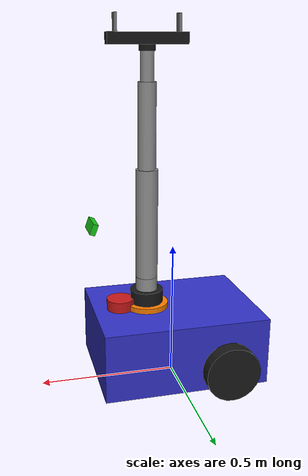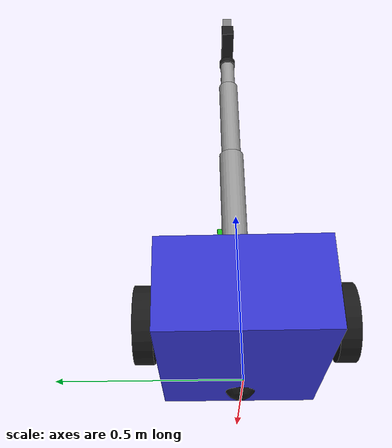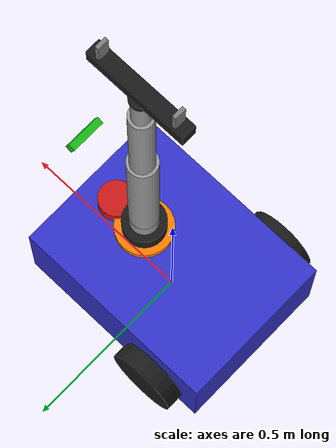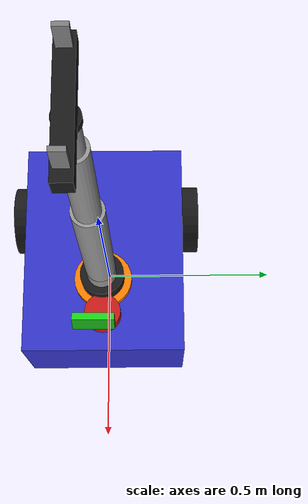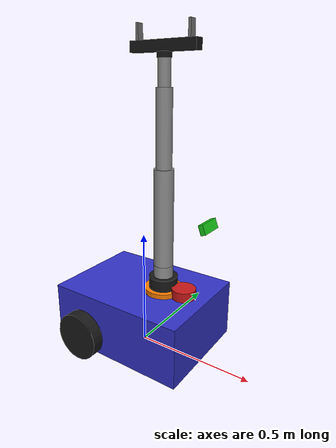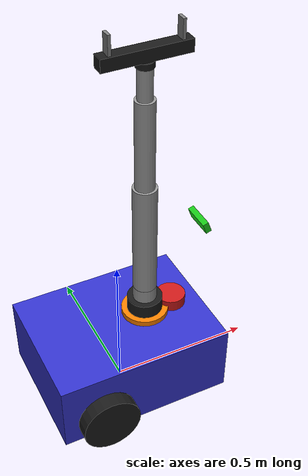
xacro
<?xml version="1.0"?>
<robot name="warehouse_robot" xmlns:xacro="http://www.ros.org/wiki/xacro">

  <xacro:include filename="$(find warehouse_robot_description)/urdf/base.xacro" />
  <xacro:include filename="$(find warehouse_robot_description)/urdf/wheels.xacro" />
  <xacro:include filename="$(find warehouse_robot_description)/urdf/sensors.xacro" />
  <xacro:include filename="$(find warehouse_robot_description)/urdf/arm_mount.xacro" />
  <xacro:include filename="$(find warehouse_robot_description)/urdf/arm.xacro" />
  <xacro:include filename="$(find warehouse_robot_description)/urdf/gripper.xacro" />
  <xacro:include filename="$(find warehouse_robot_description)/urdf/ros2_control.xacro" />

  <!-- Plugins for Gazebo Sim -->
  <gazebo>
    <plugin filename="gz_ros2_control-system" name="gz_ros2_control::GazeboSimROS2ControlPlugin">
      <ros>
        <namespace>/</namespace>
      </ros>
      <parameters>$(find warehouse_bringup)/config/controllers.yaml</parameters>
    </plugin>
  </gazebo>

</robot>

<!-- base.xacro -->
<robot xmlns:xacro="http://www.ros.org/wiki/xacro">

  <xacro:property name="base_length" value="0.6"/>
  <xacro:property name="base_width" value="0.45"/>
  <xacro:property name="base_height" value="0.25"/>
  <xacro:property name="base_z_offset" value="0.15"/> <!-- From ground to center of base -->

  <material name="blue">
    <color rgba="0.2 0.2 0.8 1"/>
  </material>

  <link name="base_footprint"/>

  <joint name="base_joint" type="fixed">
    <parent link="base_footprint"/>
    <child link="base_link"/>
    <origin xyz="0 0 ${base_z_offset}" rpy="0 0 0"/>
  </joint>

  <link name="base_link">
    <visual>
      <origin xyz="0 0 0" rpy="0 0 0"/>
      <geometry>
        <box size="${base_length} ${base_width} ${base_height}"/>
      </geometry>
      <material name="blue"/>
    </visual>
    <collision>
      <origin xyz="0 0 0" rpy="0 0 0"/>
      <geometry>
        <box size="${base_length} ${base_width} ${base_height}"/>
      </geometry>
    </collision>
    <inertial>
      <origin xyz="0 0 0" rpy="0 0 0"/>
      <mass value="20.0"/>
      <inertia ixx="1.0" ixy="0.0" ixz="0.0" iyy="1.0" iyz="0.0" izz="1.0"/>
    </inertial>
  </link>

  <gazebo reference="base_link">
    <material>Gazebo/Blue</material>
  </gazebo>

</robot>

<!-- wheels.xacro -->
<robot xmlns:xacro="http://www.ros.org/wiki/xacro">

  <xacro:property name="wheel_radius" value="0.1"/>
  <xacro:property name="wheel_width" value="0.05"/>
  <xacro:property name="wheel_separation" value="0.5"/> <!-- base_width 0.45 + width 0.05 -->
  <xacro:property name="wheel_x_offset" value="-0.15"/>
  <xacro:property name="wheel_z_offset" value="-0.05"/> <!-- 0.15 (base_link) - 0.10 (wheel radius) = 0.05 -->

  <material name="black">
    <color rgba="0.1 0.1 0.1 1"/>
  </material>

  <xacro:macro name="drive_wheel" params="prefix y_reflect">
    <link name="${prefix}_wheel_link">
      <visual>
        <origin xyz="0 0 0" rpy="${pi/2} 0 0"/>
        <geometry>
          <cylinder radius="${wheel_radius}" length="${wheel_width}"/>
        </geometry>
        <material name="black"/>
      </visual>
      <collision>
        <origin xyz="0 0 0" rpy="${pi/2} 0 0"/>
        <geometry>
          <cylinder radius="${wheel_radius}" length="${wheel_width}"/>
        </geometry>
      </collision>
      <inertial>
        <origin xyz="0 0 0" rpy="${pi/2} 0 0"/>
        <mass value="1.0"/>
        <inertia ixx="0.01" ixy="0.0" ixz="0.0" iyy="0.01" iyz="0.0" izz="0.01"/>
      </inertial>
    </link>

    <joint name="${prefix}_wheel_joint" type="continuous">
      <parent link="base_link"/>
      <child link="${prefix}_wheel_link"/>
      <origin xyz="${wheel_x_offset} ${y_reflect * wheel_separation / 2} ${wheel_z_offset}" rpy="0 0 0"/>
      <axis xyz="0 1 0"/>
    </joint>

    <gazebo reference="${prefix}_wheel_link">
      <material>Gazebo/DarkGrey</material>
      <mu1>1.0</mu1>
      <mu2>1.0</mu2>
    </gazebo>
  </xacro:macro>

  <xacro:drive_wheel prefix="left" y_reflect="1"/>
  <xacro:drive_wheel prefix="right" y_reflect="-1"/>

  <!-- Caster Wheel -->
  <xacro:property name="caster_radius" value="0.05"/>
  <xacro:property name="caster_x_offset" value="0.2"/>
  <xacro:property name="caster_z_offset" value="-0.1"/> <!-- 0.15 (base_link) - 0.05 (caster radius) = 0.10 -->

  <link name="caster_wheel_link">
    <visual>
      <origin xyz="0 0 0" rpy="0 0 0"/>
      <geometry>
        <sphere radius="${caster_radius}"/>
      </geometry>
      <material name="black"/>
    </visual>
    <collision>
      <origin xyz="0 0 0" rpy="0 0 0"/>
      <geometry>
        <sphere radius="${caster_radius}"/>
      </geometry>
    </collision>
    <inertial>
      <origin xyz="0 0 0" rpy="0 0 0"/>
      <mass value="0.5"/>
      <inertia ixx="0.001" ixy="0.0" ixz="0.0" iyy="0.001" iyz="0.0" izz="0.001"/>
    </inertial>
  </link>

  <joint name="caster_wheel_joint" type="fixed">
    <parent link="base_link"/>
    <child link="caster_wheel_link"/>
    <origin xyz="${caster_x_offset} 0 ${caster_z_offset}" rpy="0 0 0"/>
  </joint>

  <gazebo reference="caster_wheel_link">
    <material>Gazebo/DarkGrey</material>
    <mu1>0.01</mu1>
    <mu2>0.01</mu2>
  </gazebo>

</robot>

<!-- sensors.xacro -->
<robot xmlns:xacro="http://www.ros.org/wiki/xacro">

  <material name="red">
    <color rgba="0.8 0.1 0.1 1"/>
  </material>

  <material name="green">
    <color rgba="0.1 0.8 0.1 1"/>
  </material>

  <material name="yellow">
    <color rgba="0.8 0.8 0.1 1"/>
  </material>

  <!-- Lidar -->
  <link name="lidar_link">
    <visual>
      <origin xyz="0 0 0" rpy="0 0 0"/>
      <geometry>
        <cylinder radius="0.05" length="0.04"/>
      </geometry>
      <material name="red"/>
    </visual>
    <collision>
      <origin xyz="0 0 0" rpy="0 0 0"/>
      <geometry>
        <cylinder radius="0.05" length="0.04"/>
      </geometry>
    </collision>
    <inertial>
      <mass value="0.1"/>
      <inertia ixx="0.0001" ixy="0.0" ixz="0.0" iyy="0.0001" iyz="0.0" izz="0.0001"/>
    </inertial>
  </link>

  <joint name="lidar_joint" type="fixed">
    <parent link="base_link"/>
    <child link="lidar_link"/>
    <origin xyz="0.2 0 ${0.25/2 + 0.02}" rpy="0 0 0"/>
  </joint>

  <gazebo reference="lidar_link">
    <sensor type="gpu_lidar" name="lidar_sensor">
      <pose>0 0 0 0 0 0</pose>
      <visualize>true</visualize>
      <update_rate>5.0</update_rate>
      <ray>
        <scan>
          <horizontal>
            <samples>360</samples>
            <resolution>1</resolution>
            <min_angle>-3.14159</min_angle>
            <max_angle>3.14159</max_angle>
          </horizontal>
        </scan>
        <range>
          <min>0.15</min>
          <max>12.0</max>
          <resolution>0.01</resolution>
        </range>
      </ray>
      <topic>scan</topic>
      <gz_frame_id>lidar_link</gz_frame_id>
    </sensor>
  </gazebo>

  <!-- Camera -->
  <link name="camera_link">
    <visual>
      <origin xyz="0 0 0" rpy="0 0 0"/>
      <geometry>
        <box size="0.02 0.1 0.04"/>
      </geometry>
      <material name="green"/>
    </visual>
    <collision>
      <origin xyz="0 0 0" rpy="0 0 0"/>
      <geometry>
        <box size="0.02 0.1 0.04"/>
      </geometry>
    </collision>
    <inertial>
      <mass value="0.05"/>
      <inertia ixx="0.0001" ixy="0.0" ixz="0.0" iyy="0.0001" iyz="0.0" izz="0.0001"/>
    </inertial>
  </link>

  <joint name="camera_joint" type="fixed">
    <parent link="base_link"/>
    <child link="camera_link"/>
    <!-- Raise the camera above the conveyor edge so it can see product tags
         during the reception stop without the belt occluding the marker. -->
    <origin xyz="0.3 0 0.45" rpy="0 -0.35 0"/>
  </joint>

  <link name="camera_link_optical"/>

  <joint name="camera_optical_joint" type="fixed">
    <parent link="camera_link"/>
    <child link="camera_link_optical"/>
    <origin xyz="0 0 0" rpy="${-pi/2} 0 ${-pi/2}"/>
  </joint>

  <gazebo reference="camera_link">
    <sensor type="camera" name="camera_sensor">
      <pose>0 0 0 0 0 0</pose>
      <visualize>true</visualize>
      <update_rate>30.0</update_rate>
      <always_on>true</always_on>
      <camera name="rgb_camera">
        <horizontal_fov>1.3962634</horizontal_fov>
        <image>
          <width>640</width>
          <height>480</height>
          <format>R8G8B8</format>
        </image>
        <clip>
          <near>0.02</near>
          <far>300</far>
        </clip>
      </camera>
      <topic>camera/image_raw</topic>
      <gz_frame_id>camera_link_optical</gz_frame_id>
    </sensor>
  </gazebo>

  <!-- Downward-facing camera for floor landmarks -->
  <link name="down_camera_link">
    <visual>
      <origin xyz="0 0 0" rpy="0 0 0"/>
      <geometry>
        <box size="0.05 0.05 0.03"/>
      </geometry>
      <material name="green"/>
    </visual>
    <collision>
      <origin xyz="0 0 0" rpy="0 0 0"/>
      <geometry>
        <box size="0.05 0.05 0.03"/>
      </geometry>
    </collision>
    <inertial>
      <mass value="0.04"/>
      <inertia ixx="0.00005" ixy="0.0" ixz="0.0" iyy="0.00005" iyz="0.0" izz="0.00005"/>
    </inertial>
  </link>

  <joint name="down_camera_joint" type="fixed">
    <parent link="base_link"/>
    <child link="down_camera_link"/>
    <origin xyz="0.18 0 0.08" rpy="0 ${-pi/2} 0"/>
  </joint>

  <link name="down_camera_link_optical"/>

  <joint name="down_camera_optical_joint" type="fixed">
    <parent link="down_camera_link"/>
    <child link="down_camera_link_optical"/>
    <origin xyz="0 0 0" rpy="${-pi/2} 0 ${-pi/2}"/>
  </joint>

  <gazebo reference="down_camera_link">
    <sensor type="camera" name="down_camera_sensor">
      <pose>0 0 0 0 0 0</pose>
      <visualize>false</visualize>
      <update_rate>20.0</update_rate>
      <always_on>true</always_on>
      <camera name="down_rgb_camera">
        <horizontal_fov>1.2217304764</horizontal_fov>
        <image>
          <width>640</width>
          <height>480</height>
          <format>R8G8B8</format>
        </image>
        <clip>
          <near>0.02</near>
          <far>5.0</far>
        </clip>
      </camera>
      <topic>down_camera/image_raw</topic>
      <gz_frame_id>down_camera_link_optical</gz_frame_id>
    </sensor>
  </gazebo>

  <!-- IMU -->
  <link name="imu_link">
    <visual>
      <origin xyz="0 0 0" rpy="0 0 0"/>
      <geometry>
        <box size="0.02 0.02 0.02"/>
      </geometry>
      <material name="yellow"/>
    </visual>
    <collision>
      <origin xyz="0 0 0" rpy="0 0 0"/>
      <geometry>
        <box size="0.02 0.02 0.02"/>
      </geometry>
    </collision>
    <inertial>
      <mass value="0.01"/>
      <inertia ixx="0.0001" ixy="0.0" ixz="0.0" iyy="0.0001" iyz="0.0" izz="0.0001"/>
    </inertial>
  </link>

  <joint name="imu_joint" type="fixed">
    <parent link="base_link"/>
    <child link="imu_link"/>
    <origin xyz="0 0 0" rpy="0 0 0"/>
  </joint>

  <gazebo reference="imu_link">
    <sensor type="imu" name="imu_sensor">
      <always_on>true</always_on>
      <update_rate>100.0</update_rate>
      <topic>imu/data</topic>
      <gz_frame_id>imu_link</gz_frame_id>
    </sensor>
  </gazebo>

</robot>

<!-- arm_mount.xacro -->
<robot xmlns:xacro="http://www.ros.org/wiki/xacro">

  <material name="orange">
    <color rgba="1.0 0.5 0.0 1"/>
  </material>

  <link name="arm_mount_link">
    <visual>
      <origin xyz="0 0 0" rpy="0 0 0"/>
      <geometry>
        <cylinder radius="0.08" length="0.02"/>
      </geometry>
      <material name="orange"/>
    </visual>
    <collision>
      <origin xyz="0 0 0" rpy="0 0 0"/>
      <geometry>
        <cylinder radius="0.08" length="0.02"/>
      </geometry>
    </collision>
    <inertial>
      <mass value="0.2"/>
      <inertia ixx="0.001" ixy="0.0" ixz="0.0" iyy="0.001" iyz="0.0" izz="0.001"/>
    </inertial>
  </link>

  <joint name="arm_mount_joint" type="fixed">
    <parent link="base_link"/>
    <child link="arm_mount_link"/>
    <origin xyz="0.1 0 ${0.25/2 + 0.01}" rpy="0 0 0"/>
  </joint>

  <gazebo reference="arm_mount_link">
    <material>Gazebo/Orange</material>
  </gazebo>

</robot>

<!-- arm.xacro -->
<robot xmlns:xacro="http://www.ros.org/wiki/xacro">

  <!-- Properties -->
  <xacro:property name="arm_radius" value="0.04" />
  <xacro:property name="arm_base_h" value="0.05" />
  <xacro:property name="link1_h" value="0.05" />
  <xacro:property name="link2_l" value="0.4" />
  <xacro:property name="link3_l" value="0.3" />
  <xacro:property name="link4_l" value="0.1" />

  <material name="arm_gray">
    <color rgba="0.6 0.6 0.6 1.0"/>
  </material>

  <material name="arm_black">
    <color rgba="0.1 0.1 0.1 1.0"/>
  </material>

  <!-- Macro for cylindrical inertial -->
  <xacro:macro name="cylinder_inertial" params="mass radius length">
    <inertial>
      <mass value="${mass}"/>
      <inertia ixx="${mass*(3*radius*radius + length*length)/12}" ixy="0" ixz="0"
               iyy="${mass*(3*radius*radius + length*length)/12}" iyz="0"
               izz="${mass*radius*radius/2}"/>
    </inertial>
  </xacro:macro>

  <!-- Arm Base -->
  <link name="arm_base_link">
    <visual>
      <origin xyz="0 0 ${arm_base_h/2}" rpy="0 0 0"/>
      <geometry>
        <cylinder radius="${arm_radius*1.5}" length="${arm_base_h}"/>
      </geometry>
      <material name="arm_black"/>
    </visual>
    <collision>
      <origin xyz="0 0 ${arm_base_h/2}" rpy="0 0 0"/>
      <geometry>
        <cylinder radius="${arm_radius*1.5}" length="${arm_base_h}"/>
      </geometry>
    </collision>
    <xacro:cylinder_inertial mass="0.5" radius="${arm_radius*1.5}" length="${arm_base_h}"/>
  </link>

  <joint name="arm_mount_to_base" type="fixed">
    <parent link="arm_mount_link"/>
    <child link="arm_base_link"/>
    <origin xyz="0 0 0.01" rpy="0 0 0"/>
  </joint>

  <!-- Link 1 (Yaw) -->
  <link name="link_1">
    <visual>
      <origin xyz="0 0 ${link1_h/2}" rpy="0 0 0"/>
      <geometry>
        <cylinder radius="${arm_radius}" length="${link1_h}"/>
      </geometry>
      <material name="arm_gray"/>
    </visual>
    <collision>
      <origin xyz="0 0 ${link1_h/2}" rpy="0 0 0"/>
      <geometry>
        <cylinder radius="${arm_radius}" length="${link1_h}"/>
      </geometry>
    </collision>
    <xacro:cylinder_inertial mass="0.4" radius="${arm_radius}" length="${link1_h}"/>
  </link>

  <joint name="joint1_yaw" type="revolute">
    <parent link="arm_base_link"/>
    <child link="link_1"/>
    <origin xyz="0 0 ${arm_base_h}" rpy="0 0 0"/>
    <axis xyz="0 0 1"/>
    <limit lower="-3.1415" upper="3.1415" effort="100" velocity="1.0"/>
  </joint>

  <!-- Link 2 (Shoulder Pitch) -->
  <link name="link_2">
    <visual>
      <origin xyz="0 0 ${link2_l/2}" rpy="0 0 0"/>
      <geometry>
        <cylinder radius="${arm_radius}" length="${link2_l}"/>
      </geometry>
      <material name="arm_gray"/>
    </visual>
    <collision>
      <origin xyz="0 0 ${link2_l/2}" rpy="0 0 0"/>
      <geometry>
        <cylinder radius="${arm_radius}" length="${link2_l}"/>
      </geometry>
    </collision>
    <xacro:cylinder_inertial mass="1.0" radius="${arm_radius}" length="${link2_l}"/>
  </link>

  <joint name="joint2_pitch" type="revolute">
    <parent link="link_1"/>
    <child link="link_2"/>
    <origin xyz="0 0 ${link1_h}" rpy="0 0 0"/>
    <axis xyz="0 1 0"/>
    <limit lower="-1.57" upper="1.57" effort="100" velocity="1.0"/>
  </joint>

  <!-- Link 3 (Elbow Pitch) -->
  <link name="link_3">
    <visual>
      <origin xyz="0 0 ${link3_l/2}" rpy="0 0 0"/>
      <geometry>
        <cylinder radius="${arm_radius*0.8}" length="${link3_l}"/>
      </geometry>
      <material name="arm_gray"/>
    </visual>
    <collision>
      <origin xyz="0 0 ${link3_l/2}" rpy="0 0 0"/>
      <geometry>
        <cylinder radius="${arm_radius*0.8}" length="${link3_l}"/>
      </geometry>
    </collision>
    <xacro:cylinder_inertial mass="0.8" radius="${arm_radius*0.8}" length="${link3_l}"/>
  </link>

  <joint name="joint3_pitch" type="revolute">
    <parent link="link_2"/>
    <child link="link_3"/>
    <origin xyz="0 0 ${link2_l}" rpy="0 0 0"/>
    <axis xyz="0 1 0"/>
    <limit lower="-2.5" upper="2.5" effort="100" velocity="1.0"/>
  </joint>

  <!-- Link 4 (Wrist Pitch) -->
  <link name="link_4">
    <visual>
      <origin xyz="0 0 ${link4_l/2}" rpy="0 0 0"/>
      <geometry>
        <cylinder radius="${arm_radius*0.6}" length="${link4_l}"/>
      </geometry>
      <material name="arm_gray"/>
    </visual>
    <collision>
      <origin xyz="0 0 ${link4_l/2}" rpy="0 0 0"/>
      <geometry>
        <cylinder radius="${arm_radius*0.6}" length="${link4_l}"/>
      </geometry>
    </collision>
    <xacro:cylinder_inertial mass="0.3" radius="${arm_radius*0.6}" length="${link4_l}"/>
  </link>

  <joint name="joint4_pitch" type="revolute">
    <parent link="link_3"/>
    <child link="link_4"/>
    <origin xyz="0 0 ${link3_l}" rpy="0 0 0"/>
    <axis xyz="0 1 0"/>
    <limit lower="-1.57" upper="1.57" effort="50" velocity="1.0"/>
  </joint>

  <!-- Wrist Roll Link -->
  <link name="wrist_roll_link">
    <visual>
      <origin xyz="0 0 0.01" rpy="0 0 0"/>
      <geometry>
        <cylinder radius="${arm_radius*0.7}" length="0.02"/>
      </geometry>
      <material name="arm_black"/>
    </visual>
    <collision>
      <origin xyz="0 0 0.01" rpy="0 0 0"/>
      <geometry>
        <cylinder radius="${arm_radius*0.7}" length="0.02"/>
      </geometry>
    </collision>
    <xacro:cylinder_inertial mass="0.1" radius="${arm_radius*0.7}" length="0.02"/>
  </link>

  <joint name="joint5_roll" type="revolute">
    <parent link="link_4"/>
    <child link="wrist_roll_link"/>
    <origin xyz="0 0 ${link4_l}" rpy="0 0 0"/>
    <axis xyz="0 0 1"/>
    <limit lower="-3.1415" upper="3.1415" effort="50" velocity="1.0"/>
  </joint>

  <!-- Gazebo colors -->
  <gazebo reference="arm_base_link">
    <material>Gazebo/Black</material>
  </gazebo>
  <gazebo reference="link_1">
    <material>Gazebo/Grey</material>
  </gazebo>
  <gazebo reference="link_2">
    <material>Gazebo/Grey</material>
  </gazebo>
  <gazebo reference="link_3">
    <material>Gazebo/Grey</material>
  </gazebo>
  <gazebo reference="link_4">
    <material>Gazebo/Grey</material>
  </gazebo>
  <gazebo reference="wrist_roll_link">
    <material>Gazebo/Black</material>
  </gazebo>

</robot>

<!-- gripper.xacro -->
<robot xmlns:xacro="http://www.ros.org/wiki/xacro">

  <!-- Gripper Base -->
  <link name="gripper_base_link">
    <visual>
      <origin xyz="0 0 0.02" rpy="0 0 0"/>
      <geometry>
        <box size="0.28 0.04 0.04"/>
      </geometry>
      <material name="gripper_black">
        <color rgba="0.1 0.1 0.1 1.0"/>
      </material>
    </visual>
    <collision>
      <origin xyz="0 0 0.02" rpy="0 0 0"/>
      <geometry>
        <box size="0.28 0.04 0.04"/>
      </geometry>
    </collision>
    <inertial>
      <mass value="0.1"/>
      <inertia ixx="0.0001" ixy="0" ixz="0" iyy="0.0001" iyz="0" izz="0.0001"/>
    </inertial>
  </link>

  <joint name="gripper_base_joint" type="fixed">
    <parent link="wrist_roll_link"/>
    <child link="gripper_base_link"/>
    <origin xyz="0 0 0.02" rpy="0 0 0"/>
  </joint>

  <!-- Left Finger -->
  <link name="left_finger">
    <visual>
      <origin xyz="0 0 0.03" rpy="0 0 0"/>
      <geometry>
        <box size="0.01 0.03 0.06"/>
      </geometry>
      <material name="gripper_gray">
        <color rgba="0.5 0.5 0.5 1.0"/>
      </material>
    </visual>
    <collision>
      <origin xyz="0 0 0.03" rpy="0 0 0"/>
      <geometry>
        <box size="0.01 0.03 0.06"/>
      </geometry>
    </collision>
    <inertial>
      <mass value="0.02"/>
      <inertia ixx="0.00001" ixy="0" ixz="0" iyy="0.00001" iyz="0" izz="0.00001"/>
    </inertial>
  </link>

  <joint name="left_finger_joint" type="prismatic">
    <parent link="gripper_base_link"/>
    <child link="left_finger"/>
    <origin xyz="-0.11 0 0.04" rpy="0 0 0"/>
    <axis xyz="1 0 0"/>
    <limit lower="0.0" upper="0.04" effort="20" velocity="0.08"/>
    <dynamics damping="6.0" friction="2.0"/>
  </joint>

  <!-- Right Finger -->
  <link name="right_finger">
    <visual>
      <origin xyz="0 0 0.03" rpy="0 0 0"/>
      <geometry>
        <box size="0.01 0.03 0.06"/>
      </geometry>
      <material name="gripper_gray"/>
    </visual>
    <collision>
      <origin xyz="0 0 0.03" rpy="0 0 0"/>
      <geometry>
        <box size="0.01 0.03 0.06"/>
      </geometry>
    </collision>
    <inertial>
      <mass value="0.02"/>
      <inertia ixx="0.00001" ixy="0" ixz="0" iyy="0.00001" iyz="0" izz="0.00001"/>
    </inertial>
  </link>

  <joint name="right_finger_joint" type="prismatic">
    <parent link="gripper_base_link"/>
    <child link="right_finger"/>
    <origin xyz="0.11 0 0.04" rpy="0 0 0"/>
    <axis xyz="-1 0 0"/>
    <limit lower="0.0" upper="0.04" effort="20" velocity="0.08"/>
    <dynamics damping="6.0" friction="2.0"/>
  </joint>

  <!-- Gazebo Colors -->
  <gazebo reference="gripper_base_link">
    <material>Gazebo/DarkGrey</material>
  </gazebo>
  <gazebo reference="left_finger">
    <material>Gazebo/Grey</material>
    <mu1>12.0</mu1>
    <mu2>12.0</mu2>
    <kp>50000.0</kp>
    <kd>15.0</kd>
    <minDepth>0.0005</minDepth>
  </gazebo>
  <gazebo reference="right_finger">
    <material>Gazebo/Grey</material>
    <mu1>12.0</mu1>
    <mu2>12.0</mu2>
    <kp>50000.0</kp>
    <kd>15.0</kd>
    <minDepth>0.0005</minDepth>
  </gazebo>

</robot>
